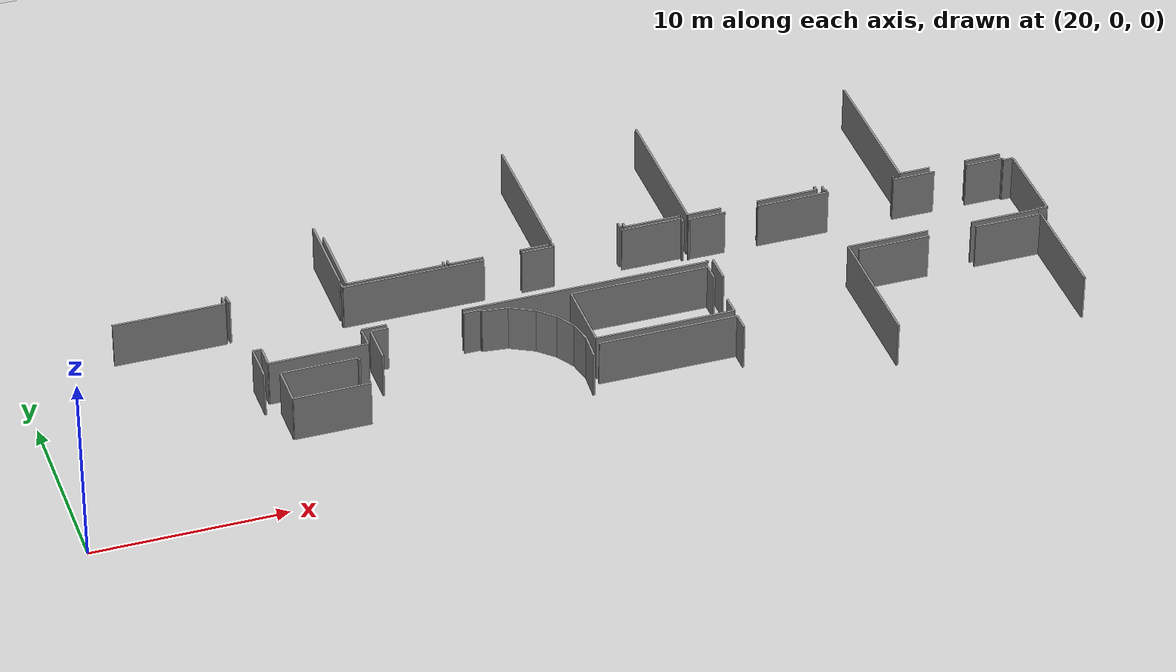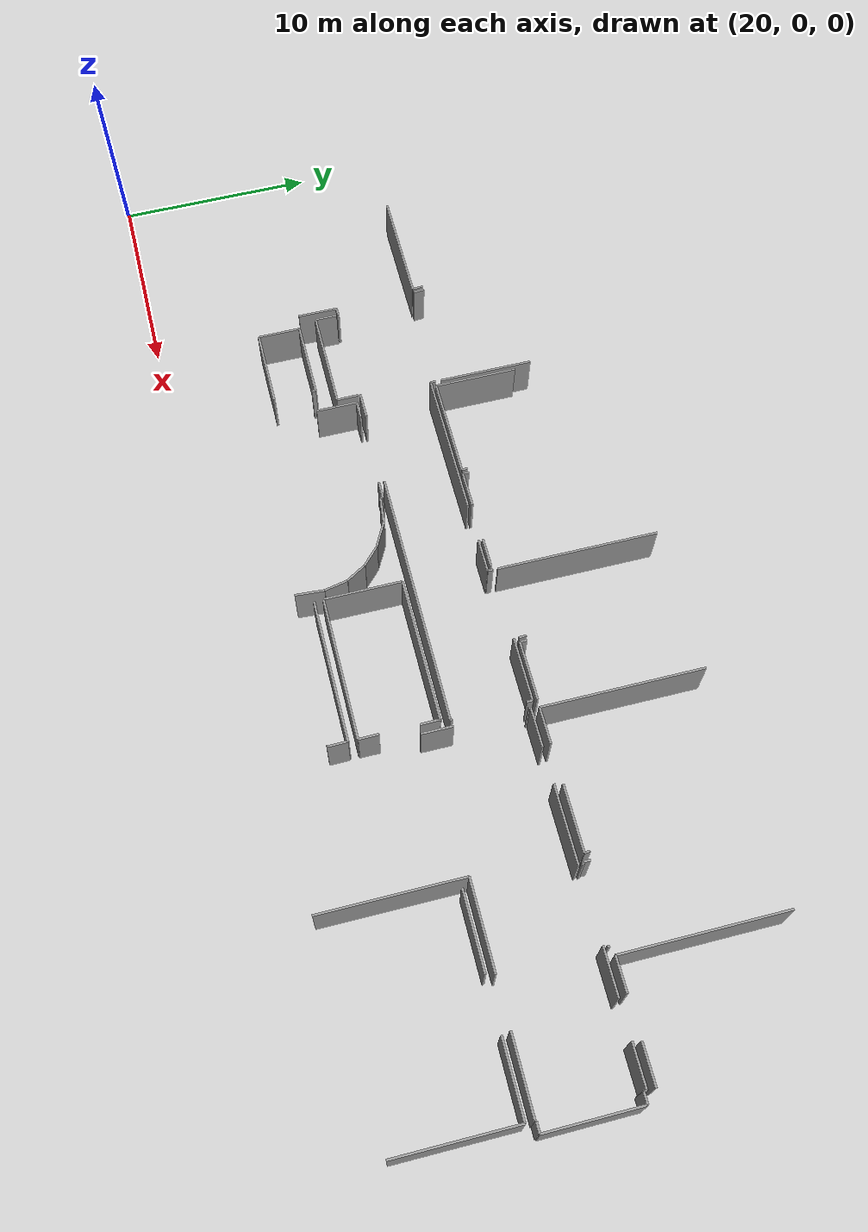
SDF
<sdf version="1.6">
 <world name="default">
  <model name="ground_plane">
   <static>1</static>
   <link name="link">
    <collision name="collision">
     <geometry><plane><normal>0 0 1</normal><size>100 100</size></plane></geometry>
     <surface><friction><ode><mu>100</mu><mu2>50</mu2></ode></friction></surface>
    </collision>
    <visual name="visual">
     <cast_shadows>0</cast_shadows>
     <geometry><plane><normal>0 0 1</normal><size>100 100</size></plane></geometry>
     <material>
      <script><uri>file://media/materials/scripts/gazebo.material</uri><name>Gazebo/Grey</name></script>
     </material>
    </visual>
   </link>
  </model>
  <model name="0510032217_A-40">
   <static>1</static>
   <link name="Wall_15">
    <collision name="Wall_15_Collision">
     <geometry><box><size>0.261014110243 0.1 2.5</size></box></geometry>
     <pose>0.130507055121 0 1.25 0 0 0</pose>
    </collision>
    <visual name="Wall_15_Visual">
     <pose>0.130507055121 0 1.25 0 0 0</pose>
     <geometry><box><size>0.261014110243 0.1 2.5</size></box></geometry>
     <material>
      <script><uri>file://media/materials/scripts/gazebo.material</uri><name>Gazebo/Grey</name></script>
      <ambient>1 1 1 1</ambient>
     </material>
    </visual>
    <pose>113.443495584 -39.4602324637 0 0 0 -1.57079632679</pose>
   </link>
   <link name="Wall_16">
    <collision name="Wall_16_Collision">
     <geometry><box><size>7.40901938889 0.1 2.5</size></box></geometry>
     <pose>3.70450969445 0 1.25 0 0 0</pose>
    </collision>
    <visual name="Wall_16_Visual">
     <pose>3.70450969445 0 1.25 0 0 0</pose>
     <geometry><box><size>7.40901938889 0.1 2.5</size></box></geometry>
     <material>
      <script><uri>file://media/materials/scripts/gazebo.material</uri><name>Gazebo/Grey</name></script>
      <ambient>1 1 1 1</ambient>
     </material>
    </visual>
    <pose>113.443495584 -39.721246574 0 0 0 0.0</pose>
   </link>
   <link name="Wall_17">
    <collision name="Wall_17_Collision">
     <geometry><box><size>1.70160389808 0.1 2.5</size></box></geometry>
     <pose>0.850801949041 0 1.25 0 0 0</pose>
    </collision>
    <visual name="Wall_17_Visual">
     <pose>0.850801949041 0 1.25 0 0 0</pose>
     <geometry><box><size>1.70160389808 0.1 2.5</size></box></geometry>
     <material>
      <script><uri>file://media/materials/scripts/gazebo.material</uri><name>Gazebo/Grey</name></script>
      <ambient>1 1 1 1</ambient>
     </material>
    </visual>
    <pose>122.838353974 -39.721246574 0 0 0 0.0</pose>
   </link>
   <link name="Wall_18">
    <collision name="Wall_18_Collision">
     <geometry><box><size>0.251877981931 0.1 2.5</size></box></geometry>
     <pose>0.125938990965 0 1.25 0 0 0</pose>
    </collision>
    <visual name="Wall_18_Visual">
     <pose>0.125938990965 0 1.25 0 0 0</pose>
     <geometry><box><size>0.251877981931 0.1 2.5</size></box></geometry>
     <material>
      <script><uri>file://media/materials/scripts/gazebo.material</uri><name>Gazebo/Grey</name></script>
      <ambient>1 1 1 1</ambient>
     </material>
    </visual>
    <pose>124.539957872 -39.721246574 0 0 0 1.57079632679</pose>
   </link>
   <link name="Wall_19">
    <collision name="Wall_19_Collision">
     <geometry><box><size>3.22175413664 0.1 2.5</size></box></geometry>
     <pose>1.61087706832 0 1.25 0 0 0</pose>
    </collision>
    <visual name="Wall_19_Visual">
     <pose>1.61087706832 0 1.25 0 0 0</pose>
     <geometry><box><size>3.22175413664 0.1 2.5</size></box></geometry>
     <material>
      <script><uri>file://media/materials/scripts/gazebo.material</uri><name>Gazebo/Grey</name></script>
      <ambient>1 1 1 1</ambient>
     </material>
    </visual>
    <pose>128.242627652 -39.469368592 0 0 0 0.0</pose>
   </link>
   <link name="Wall_20">
    <collision name="Wall_20_Collision">
     <geometry><box><size>0.282077961628 0.1 2.5</size></box></geometry>
     <pose>0.141038980814 0 1.25 0 0 0</pose>
    </collision>
    <visual name="Wall_20_Visual">
     <pose>0.141038980814 0 1.25 0 0 0</pose>
     <geometry><box><size>0.282077961628 0.1 2.5</size></box></geometry>
     <material>
      <script><uri>file://media/materials/scripts/gazebo.material</uri><name>Gazebo/Grey</name></script>
      <ambient>1 1 1 1</ambient>
     </material>
    </visual>
    <pose>131.464381789 -39.469368592 0 0 0 -1.57079632679</pose>
   </link>
   <link name="Wall_21">
    <collision name="Wall_21_Collision">
     <geometry><box><size>0.0946604405644 0.1 2.5</size></box></geometry>
     <pose>0.0473302202822 0 1.25 0 0 0</pose>
    </collision>
    <visual name="Wall_21_Visual">
     <pose>0.0473302202822 0 1.25 0 0 0</pose>
     <geometry><box><size>0.0946604405644 0.1 2.5</size></box></geometry>
     <material>
      <script><uri>file://media/materials/scripts/gazebo.material</uri><name>Gazebo/Grey</name></script>
      <ambient>1 1 1 1</ambient>
     </material>
    </visual>
    <pose>131.464381789 -43.2985483707 0 0 0 -1.57079632679</pose>
   </link>
   <link name="Wall_22">
    <collision name="Wall_22_Collision">
     <geometry><box><size>12.9276215613 0.1 2.5</size></box></geometry>
     <pose>6.46381078063 0 1.25 0 0 0</pose>
    </collision>
    <visual name="Wall_22_Visual">
     <pose>6.46381078063 0 1.25 0 0 0</pose>
     <geometry><box><size>12.9276215613 0.1 2.5</size></box></geometry>
     <material>
      <script><uri>file://media/materials/scripts/gazebo.material</uri><name>Gazebo/Grey</name></script>
      <ambient>1 1 1 1</ambient>
     </material>
    </visual>
    <pose>131.464381789 -43.3932088113 0 0 0 3.14159265359</pose>
   </link>
   <link name="Wall_23">
    <collision name="Wall_23_Collision">
     <geometry><box><size>1.30595878591 0.1 2.5</size></box></geometry>
     <pose>0.652979392955 0 1.25 0 0 0</pose>
    </collision>
    <visual name="Wall_23_Visual">
     <pose>0.652979392955 0 1.25 0 0 0</pose>
     <geometry><box><size>1.30595878591 0.1 2.5</size></box></geometry>
     <material>
      <script><uri>file://media/materials/scripts/gazebo.material</uri><name>Gazebo/Grey</name></script>
      <ambient>1 1 1 1</ambient>
     </material>
    </visual>
    <pose>114.604418333 -43.3932088113 0 0 0 3.14159265359</pose>
   </link>
   <link name="Wall_24">
    <collision name="Wall_24_Collision">
     <geometry><box><size>0.433458532129 0.1 2.5</size></box></geometry>
     <pose>0.216729266064 0 1.25 0 0 0</pose>
    </collision>
    <visual name="Wall_24_Visual">
     <pose>0.216729266064 0 1.25 0 0 0</pose>
     <geometry><box><size>0.433458532129 0.1 2.5</size></box></geometry>
     <material>
      <script><uri>file://media/materials/scripts/gazebo.material</uri><name>Gazebo/Grey</name></script>
      <ambient>1 1 1 1</ambient>
     </material>
    </visual>
    <pose>108.186161303 -43.3932088113 0 0 0 3.14159265359</pose>
   </link>
   <link name="Wall_25">
    <collision name="Wall_25_Collision">
     <geometry><box><size>2.03050451731 0.1 2.5</size></box></geometry>
     <pose>1.01525225865 0 1.25 0 0 0</pose>
    </collision>
    <visual name="Wall_25_Visual">
     <pose>1.01525225865 0 1.25 0 0 0</pose>
     <geometry><box><size>2.03050451731 0.1 2.5</size></box></geometry>
     <material>
      <script><uri>file://media/materials/scripts/gazebo.material</uri><name>Gazebo/Grey</name></script>
      <ambient>1 1 1 1</ambient>
     </material>
    </visual>
    <pose>107.752702771 -43.3932088113 0 0 0 -1.57079632679</pose>
   </link>
   <link name="Wall_86">
    <collision name="Wall_86_Collision">
     <geometry><box><size>4.7606841945 0.1 2.5</size></box></geometry>
     <pose>2.38034209725 0 1.25 0 0 0</pose>
    </collision>
    <visual name="Wall_86_Visual">
     <pose>2.38034209725 0 1.25 0 0 0</pose>
     <geometry><box><size>4.7606841945 0.1 2.5</size></box></geometry>
     <material>
      <script><uri>file://media/materials/scripts/gazebo.material</uri><name>Gazebo/Grey</name></script>
      <ambient>1 1 1 1</ambient>
     </material>
    </visual>
    <pose>113.449840118 -39.1850065983 0 0 0 1.57079632679</pose>
   </link>
   <link name="Wall_92">
    <collision name="Wall_92_Collision">
     <geometry><box><size>0.55442948582 0.1 2.5</size></box></geometry>
     <pose>0.27721474291 0 1.25 0 0 0</pose>
    </collision>
    <visual name="Wall_92_Visual">
     <pose>0.27721474291 0 1.25 0 0 0</pose>
     <geometry><box><size>0.55442948582 0.1 2.5</size></box></geometry>
     <material>
      <script><uri>file://media/materials/scripts/gazebo.material</uri><name>Gazebo/Grey</name></script>
      <ambient>1 1 1 1</ambient>
     </material>
    </visual>
    <pose>107.668574256 -38.6329052888 0 0 0 -1.47912112737</pose>
   </link>
   <link name="Wall_101">
    <collision name="Wall_101_Collision">
     <geometry><box><size>5.80486752614 0.1 2.5</size></box></geometry>
     <pose>2.90243376307 0 1.25 0 0 0</pose>
    </collision>
    <visual name="Wall_101_Visual">
     <pose>2.90243376307 0 1.25 0 0 0</pose>
     <geometry><box><size>5.80486752614 0.1 2.5</size></box></geometry>
     <material>
      <script><uri>file://media/materials/scripts/gazebo.material</uri><name>Gazebo/Grey</name></script>
      <ambient>1 1 1 1</ambient>
     </material>
    </visual>
    <pose>107.500571008 -39.1928738199 0 0 0 3.14159265359</pose>
   </link>
   <link name="Wall_105">
    <collision name="Wall_105_Collision">
     <geometry><box><size>0.543974283149 0.1 2.5</size></box></geometry>
     <pose>0.271987141575 0 1.25 0 0 0</pose>
    </collision>
    <visual name="Wall_105_Visual">
     <pose>0.271987141575 0 1.25 0 0 0</pose>
     <geometry><box><size>0.543974283149 0.1 2.5</size></box></geometry>
     <material>
      <script><uri>file://media/materials/scripts/gazebo.material</uri><name>Gazebo/Grey</name></script>
      <ambient>1 1 1 1</ambient>
     </material>
    </visual>
    <pose>107.467452543 -38.6499086387 0 0 0 -1.50987624249</pose>
   </link>
   <link name="Wall_121">
    <collision name="Wall_121_Collision">
     <geometry><box><size>1.50238554461 0.1 2.5</size></box></geometry>
     <pose>0.751192772307 0 1.25 0 0 0</pose>
    </collision>
    <visual name="Wall_121_Visual">
     <pose>0.751192772307 0 1.25 0 0 0</pose>
     <geometry><box><size>1.50238554461 0.1 2.5</size></box></geometry>
     <material>
      <script><uri>file://media/materials/scripts/gazebo.material</uri><name>Gazebo/Grey</name></script>
      <ambient>1 1 1 1</ambient>
     </material>
    </visual>
    <pose>124.340739519 -39.5054055426 0 0 0 3.14159265359</pose>
   </link>
   <link name="Wall_122">
    <collision name="Wall_122_Collision">
     <geometry><box><size>1.80184752817 0.1 2.5</size></box></geometry>
     <pose>0.900923764085 0 1.25 0 0 0</pose>
    </collision>
    <visual name="Wall_122_Visual">
     <pose>0.900923764085 0 1.25 0 0 0</pose>
     <geometry><box><size>1.80184752817 0.1 2.5</size></box></geometry>
     <material>
      <script><uri>file://media/materials/scripts/gazebo.material</uri><name>Gazebo/Grey</name></script>
      <ambient>1 1 1 1</ambient>
     </material>
    </visual>
    <pose>120.86139732 -39.5054055426 0 0 0 3.14159265359</pose>
   </link>
   <link name="Wall_123">
    <collision name="Wall_123_Collision">
     <geometry><box><size>0.308725002538 0.1 2.5</size></box></geometry>
     <pose>0.154362501269 0 1.25 0 0 0</pose>
    </collision>
    <visual name="Wall_123_Visual">
     <pose>0.154362501269 0 1.25 0 0 0</pose>
     <geometry><box><size>0.308725002538 0.1 2.5</size></box></geometry>
     <material>
      <script><uri>file://media/materials/scripts/gazebo.material</uri><name>Gazebo/Grey</name></script>
      <ambient>1 1 1 1</ambient>
     </material>
    </visual>
    <pose>119.059549792 -39.5054055426 0 0 0 1.57079632679</pose>
   </link>
   <link name="Wall_128">
    <collision name="Wall_128_Collision">
     <geometry><box><size>5.1102679931 0.1 2.5</size></box></geometry>
     <pose>2.55513399655 0 1.25 0 0 0</pose>
    </collision>
    <visual name="Wall_128_Visual">
     <pose>2.55513399655 0 1.25 0 0 0</pose>
     <geometry><box><size>5.1102679931 0.1 2.5</size></box></geometry>
     <material>
      <script><uri>file://media/materials/scripts/gazebo.material</uri><name>Gazebo/Grey</name></script>
      <ambient>1 1 1 1</ambient>
     </material>
    </visual>
    <pose>118.822264237 -39.4999492437 0 0 0 3.14159265359</pose>
   </link>
   <link name="Wall_129">
    <collision name="Wall_129_Collision">
     <geometry><box><size>4.17825601462 0.1 2.5</size></box></geometry>
     <pose>2.08912800731 0 1.25 0 0 0</pose>
    </collision>
    <visual name="Wall_129_Visual">
     <pose>2.08912800731 0 1.25 0 0 0</pose>
     <geometry><box><size>4.17825601462 0.1 2.5</size></box></geometry>
     <material>
      <script><uri>file://media/materials/scripts/gazebo.material</uri><name>Gazebo/Grey</name></script>
      <ambient>1 1 1 1</ambient>
     </material>
    </visual>
    <pose>113.711996244 -39.4999492437 0 0 0 1.57079632679</pose>
   </link>
   <link name="Wall_132">
    <collision name="Wall_132_Collision">
     <geometry><box><size>0.303311174576 0.1 2.5</size></box></geometry>
     <pose>0.151655587288 0 1.25 0 0 0</pose>
    </collision>
    <visual name="Wall_132_Visual">
     <pose>0.151655587288 0 1.25 0 0 0</pose>
     <geometry><box><size>0.303311174576 0.1 2.5</size></box></geometry>
     <material>
      <script><uri>file://media/materials/scripts/gazebo.material</uri><name>Gazebo/Grey</name></script>
      <ambient>1 1 1 1</ambient>
     </material>
    </visual>
    <pose>118.827339864 -39.19668054 0 0 0 -1.58753116607</pose>
   </link>
   <link name="Wall_138">
    <collision name="Wall_138_Collision">
     <geometry><box><size>8.04575677596 0.1 2.5</size></box></geometry>
     <pose>4.02287838798 0 1.25 0 0 0</pose>
    </collision>
    <visual name="Wall_138_Visual">
     <pose>4.02287838798 0 1.25 0 0 0</pose>
     <geometry><box><size>8.04575677596 0.1 2.5</size></box></geometry>
     <material>
      <script><uri>file://media/materials/scripts/gazebo.material</uri><name>Gazebo/Grey</name></script>
      <ambient>1 1 1 1</ambient>
     </material>
    </visual>
    <pose>124.550109126 -39.2351284134 0 0 0 1.57079632679</pose>
   </link>
   <link name="Wall_143">
    <collision name="Wall_143_Collision">
     <geometry><box><size>0.379794207524 0.1 2.5</size></box></geometry>
     <pose>0.189897103762 0 1.25 0 0 0</pose>
    </collision>
    <visual name="Wall_143_Visual">
     <pose>0.189897103762 0 1.25 0 0 0</pose>
     <geometry><box><size>0.379794207524 0.1 2.5</size></box></geometry>
     <material>
      <script><uri>file://media/materials/scripts/gazebo.material</uri><name>Gazebo/Grey</name></script>
      <ambient>1 1 1 1</ambient>
     </material>
    </visual>
    <pose>128.243896559 -38.8571211045 0 0 0 -1.47375399805</pose>
   </link>
   <link name="Wall_154">
    <collision name="Wall_154_Collision">
     <geometry><box><size>2.97431732819 0.1 2.5</size></box></geometry>
     <pose>1.4871586641 0 1.25 0 0 0</pose>
    </collision>
    <visual name="Wall_154_Visual">
     <pose>1.4871586641 0 1.25 0 0 0</pose>
     <geometry><box><size>2.97431732819 0.1 2.5</size></box></geometry>
     <material>
      <script><uri>file://media/materials/scripts/gazebo.material</uri><name>Gazebo/Grey</name></script>
      <ambient>1 1 1 1</ambient>
     </material>
    </visual>
    <pose>131.468188509 -39.2408384936 0 0 0 3.14159265359</pose>
   </link>
   <link name="Wall_155">
    <collision name="Wall_155_Collision">
     <geometry><box><size>0.33575271546 0.1 2.5</size></box></geometry>
     <pose>0.16787635773 0 1.25 0 0 0</pose>
    </collision>
    <visual name="Wall_155_Visual">
     <pose>0.16787635773 0 1.25 0 0 0</pose>
     <geometry><box><size>0.33575271546 0.1 2.5</size></box></geometry>
     <material>
      <script><uri>file://media/materials/scripts/gazebo.material</uri><name>Gazebo/Grey</name></script>
      <ambient>1 1 1 1</ambient>
     </material>
    </visual>
    <pose>128.493871181 -39.2408384936 0 0 0 1.57079632679</pose>
   </link>
   <link name="Wall_170">
    <collision name="Wall_170_Collision">
     <geometry><box><size>1.54527459141 0.1 2.5</size></box></geometry>
     <pose>0.772637295706 0 1.25 0 0 0</pose>
    </collision>
    <visual name="Wall_170_Visual">
     <pose>0.772637295706 0 1.25 0 0 0</pose>
     <geometry><box><size>1.54527459141 0.1 2.5</size></box></geometry>
     <material>
      <script><uri>file://media/materials/scripts/gazebo.material</uri><name>Gazebo/Grey</name></script>
      <ambient>1 1 1 1</ambient>
     </material>
    </visual>
    <pose>131.785415186 -44.8722464724 0 0 0 1.57079632679</pose>
   </link>
   <link name="Wall_171">
    <collision name="Wall_171_Collision">
     <geometry><box><size>0.116104963963 0.1 2.5</size></box></geometry>
     <pose>0.0580524819815 0 1.25 0 0 0</pose>
    </collision>
    <visual name="Wall_171_Visual">
     <pose>0.0580524819815 0 1.25 0 0 0</pose>
     <geometry><box><size>0.116104963963 0.1 2.5</size></box></geometry>
     <material>
      <script><uri>file://media/materials/scripts/gazebo.material</uri><name>Gazebo/Grey</name></script>
      <ambient>1 1 1 1</ambient>
     </material>
    </visual>
    <pose>131.785415186 -39.7720028424 0 0 0 1.57079632679</pose>
   </link>
   <link name="Wall_172">
    <collision name="Wall_172_Collision">
     <geometry><box><size>1.96553649376 0.1 2.5</size></box></geometry>
     <pose>0.982768246878 0 1.25 0 0 0</pose>
    </collision>
    <visual name="Wall_172_Visual">
     <pose>0.982768246878 0 1.25 0 0 0</pose>
     <geometry><box><size>1.96553649376 0.1 2.5</size></box></geometry>
     <material>
      <script><uri>file://media/materials/scripts/gazebo.material</uri><name>Gazebo/Grey</name></script>
      <ambient>1 1 1 1</ambient>
     </material>
    </visual>
    <pose>131.785415186 -39.6558978784 0 0 0 0.0</pose>
   </link>
   <link name="Wall_173">
    <collision name="Wall_173_Collision">
     <geometry><box><size>3.83844279769 0.1 2.5</size></box></geometry>
     <pose>1.91922139884 0 1.25 0 0 0</pose>
    </collision>
    <visual name="Wall_173_Visual">
     <pose>1.91922139884 0 1.25 0 0 0</pose>
     <geometry><box><size>3.83844279769 0.1 2.5</size></box></geometry>
     <material>
      <script><uri>file://media/materials/scripts/gazebo.material</uri><name>Gazebo/Grey</name></script>
      <ambient>1 1 1 1</ambient>
     </material>
    </visual>
    <pose>135.519807634 -39.6558978784 0 0 0 0.0</pose>
   </link>
   <link name="Wall_174">
    <collision name="Wall_174_Collision">
     <geometry><box><size>2.2637295706 0.1 2.5</size></box></geometry>
     <pose>1.1318647853 0 1.25 0 0 0</pose>
    </collision>
    <visual name="Wall_174_Visual">
     <pose>1.1318647853 0 1.25 0 0 0</pose>
     <geometry><box><size>2.2637295706 0.1 2.5</size></box></geometry>
     <material>
      <script><uri>file://media/materials/scripts/gazebo.material</uri><name>Gazebo/Grey</name></script>
      <ambient>1 1 1 1</ambient>
     </material>
    </visual>
    <pose>142.920071566 -39.6558978784 0 0 0 0.0</pose>
   </link>
   <link name="Wall_175">
    <collision name="Wall_175_Collision">
     <geometry><box><size>2.0086793219 0.1 2.5</size></box></geometry>
     <pose>1.00433966095 0 1.25 0 0 0</pose>
    </collision>
    <visual name="Wall_175_Visual">
     <pose>1.00433966095 0 1.25 0 0 0</pose>
     <geometry><box><size>2.0086793219 0.1 2.5</size></box></geometry>
     <material>
      <script><uri>file://media/materials/scripts/gazebo.material</uri><name>Gazebo/Grey</name></script>
      <ambient>1 1 1 1</ambient>
     </material>
    </visual>
    <pose>146.948850371 -39.6558978784 0 0 0 0.0</pose>
   </link>
   <link name="Wall_176">
    <collision name="Wall_176_Collision">
     <geometry><box><size>0.141483098163 0.1 2.5</size></box></geometry>
     <pose>0.0707415490813 0 1.25 0 0 0</pose>
    </collision>
    <visual name="Wall_176_Visual">
     <pose>0.0707415490813 0 1.25 0 0 0</pose>
     <geometry><box><size>0.141483098163 0.1 2.5</size></box></geometry>
     <material>
      <script><uri>file://media/materials/scripts/gazebo.material</uri><name>Gazebo/Grey</name></script>
      <ambient>1 1 1 1</ambient>
     </material>
    </visual>
    <pose>148.957529692 -39.6558978784 0 0 0 -1.57079632679</pose>
   </link>
   <link name="Wall_177">
    <collision name="Wall_177_Collision">
     <geometry><box><size>0.538016445031 0.1 2.5</size></box></geometry>
     <pose>0.269008222515 0 1.25 0 0 0</pose>
    </collision>
    <visual name="Wall_177_Visual">
     <pose>0.269008222515 0 1.25 0 0 0</pose>
     <geometry><box><size>0.538016445031 0.1 2.5</size></box></geometry>
     <material>
      <script><uri>file://media/materials/scripts/gazebo.material</uri><name>Gazebo/Grey</name></script>
      <ambient>1 1 1 1</ambient>
     </material>
    </visual>
    <pose>148.957529692 -39.7973809766 0 0 0 0.0</pose>
   </link>
   <link name="Wall_178">
    <collision name="Wall_178_Collision">
     <geometry><box><size>4.57669272155 0.1 2.5</size></box></geometry>
     <pose>2.28834636078 0 1.25 0 0 0</pose>
    </collision>
    <visual name="Wall_178_Visual">
     <pose>2.28834636078 0 1.25 0 0 0</pose>
     <geometry><box><size>4.57669272155 0.1 2.5</size></box></geometry>
     <material>
      <script><uri>file://media/materials/scripts/gazebo.material</uri><name>Gazebo/Grey</name></script>
      <ambient>1 1 1 1</ambient>
     </material>
    </visual>
    <pose>149.495546137 -39.7973809766 0 0 0 -1.57079632679</pose>
   </link>
   <link name="Wall_179">
    <collision name="Wall_179_Collision">
     <geometry><box><size>0.516445030961 0.1 2.5</size></box></geometry>
     <pose>0.258222515481 0 1.25 0 0 0</pose>
    </collision>
    <visual name="Wall_179_Visual">
     <pose>0.258222515481 0 1.25 0 0 0</pose>
     <geometry><box><size>0.516445030961 0.1 2.5</size></box></geometry>
     <material>
      <script><uri>file://media/materials/scripts/gazebo.material</uri><name>Gazebo/Grey</name></script>
      <ambient>1 1 1 1</ambient>
     </material>
    </visual>
    <pose>149.495546137 -44.3740736981 0 0 0 3.14159265359</pose>
   </link>
   <link name="Wall_180">
    <collision name="Wall_180_Collision">
     <geometry><box><size>0.0479646736372 0.1 2.5</size></box></geometry>
     <pose>0.0239823368186 0 1.25 0 0 0</pose>
    </collision>
    <visual name="Wall_180_Visual">
     <pose>0.0239823368186 0 1.25 0 0 0</pose>
     <geometry><box><size>0.0479646736372 0.1 2.5</size></box></geometry>
     <material>
      <script><uri>file://media/materials/scripts/gazebo.material</uri><name>Gazebo/Grey</name></script>
      <ambient>1 1 1 1</ambient>
     </material>
    </visual>
    <pose>148.979101106 -44.3740736981 0 0 0 -1.57079632679</pose>
   </link>
   <link name="Wall_181">
    <collision name="Wall_181_Collision">
     <geometry><box><size>3.65572023145 0.1 2.5</size></box></geometry>
     <pose>1.82786011572 0 1.25 0 0 0</pose>
    </collision>
    <visual name="Wall_181_Visual">
     <pose>1.82786011572 0 1.25 0 0 0</pose>
     <geometry><box><size>3.65572023145 0.1 2.5</size></box></geometry>
     <material>
      <script><uri>file://media/materials/scripts/gazebo.material</uri><name>Gazebo/Grey</name></script>
      <ambient>1 1 1 1</ambient>
     </material>
    </visual>
    <pose>148.979101106 -44.4220383717 0 0 0 3.14159265359</pose>
   </link>
   <link name="Wall_182">
    <collision name="Wall_182_Collision">
     <geometry><box><size>4.30793828038 0.1 2.5</size></box></geometry>
     <pose>2.15396914019 0 1.25 0 0 0</pose>
    </collision>
    <visual name="Wall_182_Visual">
     <pose>2.15396914019 0 1.25 0 0 0</pose>
     <geometry><box><size>4.30793828038 0.1 2.5</size></box></geometry>
     <material>
      <script><uri>file://media/materials/scripts/gazebo.material</uri><name>Gazebo/Grey</name></script>
      <ambient>1 1 1 1</ambient>
     </material>
    </visual>
    <pose>142.963214394 -44.4220383717 0 0 0 3.14159265359</pose>
   </link>
   <link name="Wall_183">
    <collision name="Wall_183_Collision">
     <geometry><box><size>7.00588772713 0.1 2.5</size></box></geometry>
     <pose>3.50294386357 0 1.25 0 0 0</pose>
    </collision>
    <visual name="Wall_183_Visual">
     <pose>3.50294386357 0 1.25 0 0 0</pose>
     <geometry><box><size>7.00588772713 0.1 2.5</size></box></geometry>
     <material>
      <script><uri>file://media/materials/scripts/gazebo.material</uri><name>Gazebo/Grey</name></script>
      <ambient>1 1 1 1</ambient>
     </material>
    </visual>
    <pose>138.655276114 -44.4220383717 0 0 0 -1.57079632679</pose>
   </link>
   <link name="Wall_187">
    <collision name="Wall_187_Collision">
     <geometry><box><size>3.24459445742 0.1 2.5</size></box></geometry>
     <pose>1.62229722871 0 1.25 0 0 0</pose>
    </collision>
    <visual name="Wall_187_Visual">
     <pose>1.62229722871 0 1.25 0 0 0</pose>
     <geometry><box><size>3.24459445742 0.1 2.5</size></box></geometry>
     <material>
      <script><uri>file://media/materials/scripts/gazebo.material</uri><name>Gazebo/Grey</name></script>
      <ambient>1 1 1 1</ambient>
     </material>
    </visual>
    <pose>138.872259162 -39.2566998274 0 0 0 3.14159265359</pose>
   </link>
   <link name="Wall_188">
    <collision name="Wall_188_Collision">
     <geometry><box><size>1.80692315501 0.1 2.5</size></box></geometry>
     <pose>0.903461577505 0 1.25 0 0 0</pose>
    </collision>
    <visual name="Wall_188_Visual">
     <pose>0.903461577505 0 1.25 0 0 0</pose>
     <geometry><box><size>1.80692315501 0.1 2.5</size></box></geometry>
     <material>
      <script><uri>file://media/materials/scripts/gazebo.material</uri><name>Gazebo/Grey</name></script>
      <ambient>1 1 1 1</ambient>
     </material>
    </visual>
    <pose>133.668472744 -39.2566998274 0 0 0 3.14159265359</pose>
   </link>
   <link name="Wall_189">
    <collision name="Wall_189_Collision">
     <geometry><box><size>8.06123743782 0.1 2.5</size></box></geometry>
     <pose>4.03061871891 0 1.25 0 0 0</pose>
    </collision>
    <visual name="Wall_189_Visual">
     <pose>4.03061871891 0 1.25 0 0 0</pose>
     <geometry><box><size>8.06123743782 0.1 2.5</size></box></geometry>
     <material>
      <script><uri>file://media/materials/scripts/gazebo.material</uri><name>Gazebo/Grey</name></script>
      <ambient>1 1 1 1</ambient>
     </material>
    </visual>
    <pose>131.861549589 -39.2566998274 0 0 0 1.57079632679</pose>
   </link>
   <link name="Wall_192">
    <collision name="Wall_192_Collision">
     <geometry><box><size>0.275139971168 0.1 2.5</size></box></geometry>
     <pose>0.137569985584 0 1.25 0 0 0</pose>
    </collision>
    <visual name="Wall_192_Visual">
     <pose>0.137569985584 0 1.25 0 0 0</pose>
     <geometry><box><size>0.275139971168 0.1 2.5</size></box></geometry>
     <material>
      <script><uri>file://media/materials/scripts/gazebo.material</uri><name>Gazebo/Grey</name></script>
      <ambient>1 1 1 1</ambient>
     </material>
    </visual>
    <pose>138.857032281 -38.9819815247 0 0 0 -1.5154257315</pose>
   </link>
   <link name="Wall_193">
    <collision name="Wall_193_Collision">
     <geometry><box><size>7.24418840727 0.1 2.5</size></box></geometry>
     <pose>3.62209420363 0 1.25 0 0 0</pose>
    </collision>
    <visual name="Wall_193_Visual">
     <pose>3.62209420363 0 1.25 0 0 0</pose>
     <geometry><box><size>7.24418840727 0.1 2.5</size></box></geometry>
     <material>
      <script><uri>file://media/materials/scripts/gazebo.material</uri><name>Gazebo/Grey</name></script>
      <ambient>1 1 1 1</ambient>
     </material>
    </visual>
    <pose>131.343835651 -47.7034311237 0 0 0 3.14159265359</pose>
   </link>
   <link name="Wall_194">
    <collision name="Wall_194_Collision">
     <geometry><box><size>3.86864277738 0.1 2.5</size></box></geometry>
     <pose>1.93432138869 0 1.25 0 0 0</pose>
    </collision>
    <visual name="Wall_194_Visual">
     <pose>1.93432138869 0 1.25 0 0 0</pose>
     <geometry><box><size>3.86864277738 0.1 2.5</size></box></geometry>
     <material>
      <script><uri>file://media/materials/scripts/gazebo.material</uri><name>Gazebo/Grey</name></script>
      <ambient>1 1 1 1</ambient>
     </material>
    </visual>
    <pose>124.099647244 -47.7034311237 0 0 0 1.57079632679</pose>
   </link>
   <link name="Wall_195">
    <collision name="Wall_195_Collision">
     <geometry><box><size>7.2353060603 0.1 2.5</size></box></geometry>
     <pose>3.61765303015 0 1.25 0 0 0</pose>
    </collision>
    <visual name="Wall_195_Visual">
     <pose>3.61765303015 0 1.25 0 0 0</pose>
     <geometry><box><size>7.2353060603 0.1 2.5</size></box></geometry>
     <material>
      <script><uri>file://media/materials/scripts/gazebo.material</uri><name>Gazebo/Grey</name></script>
      <ambient>1 1 1 1</ambient>
     </material>
    </visual>
    <pose>124.099647244 -43.8347883464 0 0 0 0.0</pose>
   </link>
   <link name="Wall_196">
    <collision name="Wall_196_Collision">
     <geometry><box><size>0.946350624302 0.1 2.5</size></box></geometry>
     <pose>0.473175312151 0 1.25 0 0 0</pose>
    </collision>
    <visual name="Wall_196_Visual">
     <pose>0.473175312151 0 1.25 0 0 0</pose>
     <geometry><box><size>0.946350624302 0.1 2.5</size></box></geometry>
     <material>
      <script><uri>file://media/materials/scripts/gazebo.material</uri><name>Gazebo/Grey</name></script>
      <ambient>1 1 1 1</ambient>
     </material>
    </visual>
    <pose>131.334953304 -43.8347883464 0 0 0 -1.57079632679</pose>
   </link>
   <link name="Wall_197">
    <collision name="Wall_197_Collision">
     <geometry><box><size>0.993339885899 0.1 2.5</size></box></geometry>
     <pose>0.49666994295 0 1.25 0 0 0</pose>
    </collision>
    <visual name="Wall_197_Visual">
     <pose>0.49666994295 0 1.25 0 0 0</pose>
     <geometry><box><size>0.993339885899 0.1 2.5</size></box></geometry>
     <material>
      <script><uri>file://media/materials/scripts/gazebo.material</uri><name>Gazebo/Grey</name></script>
      <ambient>1 1 1 1</ambient>
     </material>
    </visual>
    <pose>131.334953304 -46.7101309512 0 0 0 -1.56185430658</pose>
   </link>
   <link name="Wall_200">
    <collision name="Wall_200_Collision">
     <geometry><box><size>7.24165059385 0.1 2.5</size></box></geometry>
     <pose>3.62082529692 0 1.25 0 0 0</pose>
    </collision>
    <visual name="Wall_200_Visual">
     <pose>3.62082529692 0 1.25 0 0 0</pose>
     <geometry><box><size>7.24165059385 0.1 2.5</size></box></geometry>
     <material>
      <script><uri>file://media/materials/scripts/gazebo.material</uri><name>Gazebo/Grey</name></script>
      <ambient>1 1 1 1</ambient>
     </material>
    </visual>
    <pose>124.099647244 -48.1660745102 0 0 0 0.0</pose>
   </link>
   <link name="Wall_201">
    <collision name="Wall_201_Collision">
     <geometry><box><size>0.993934625926 0.1 2.5</size></box></geometry>
     <pose>0.496967312963 0 1.25 0 0 0</pose>
    </collision>
    <visual name="Wall_201_Visual">
     <pose>0.496967312963 0 1.25 0 0 0</pose>
     <geometry><box><size>0.993934625926 0.1 2.5</size></box></geometry>
     <material>
      <script><uri>file://media/materials/scripts/gazebo.material</uri><name>Gazebo/Grey</name></script>
      <ambient>1 1 1 1</ambient>
     </material>
    </visual>
    <pose>131.341297838 -48.1660745102 0 0 0 -1.57079632679</pose>
   </link>
   <link name="Wall_203">
    <collision name="Wall_203_Collision">
     <geometry><box><size>0.114201603898 0.1 2.5</size></box></geometry>
     <pose>0.057100801949 0 1.25 0 0 0</pose>
    </collision>
    <visual name="Wall_203_Visual">
     <pose>0.057100801949 0 1.25 0 0 0</pose>
     <geometry><box><size>0.114201603898 0.1 2.5</size></box></geometry>
     <material>
      <script><uri>file://media/materials/scripts/gazebo.material</uri><name>Gazebo/Grey</name></script>
      <ambient>1 1 1 1</ambient>
     </material>
    </visual>
    <pose>143.071071465 -39.4387879403 0 0 0 3.14159265359</pose>
   </link>
   <link name="Wall_204">
    <collision name="Wall_204_Collision">
     <geometry><box><size>0.126890670998 0.1 2.5</size></box></geometry>
     <pose>0.0634453354989 0 1.25 0 0 0</pose>
    </collision>
    <visual name="Wall_204_Visual">
     <pose>0.0634453354989 0 1.25 0 0 0</pose>
     <geometry><box><size>0.126890670998 0.1 2.5</size></box></geometry>
     <material>
      <script><uri>file://media/materials/scripts/gazebo.material</uri><name>Gazebo/Grey</name></script>
      <ambient>1 1 1 1</ambient>
     </material>
    </visual>
    <pose>139.365863872 -39.4387879403 0 0 0 3.14159265359</pose>
   </link>
   <link name="Wall_205">
    <collision name="Wall_205_Collision">
     <geometry><box><size>0.355293878794 0.1 2.5</size></box></geometry>
     <pose>0.177646939397 0 1.25 0 0 0</pose>
    </collision>
    <visual name="Wall_205_Visual">
     <pose>0.177646939397 0 1.25 0 0 0</pose>
     <geometry><box><size>0.355293878794 0.1 2.5</size></box></geometry>
     <material>
      <script><uri>file://media/materials/scripts/gazebo.material</uri><name>Gazebo/Grey</name></script>
      <ambient>1 1 1 1</ambient>
     </material>
    </visual>
    <pose>139.238973201 -39.4387879403 0 0 0 1.57079632679</pose>
   </link>
   <link name="Wall_227">
    <collision name="Wall_227_Collision">
     <geometry><box><size>1.9198558522 0.1 2.5</size></box></geometry>
     <pose>0.959927926099 0 1.25 0 0 0</pose>
    </collision>
    <visual name="Wall_227_Visual">
     <pose>0.959927926099 0 1.25 0 0 0</pose>
     <geometry><box><size>1.9198558522 0.1 2.5</size></box></geometry>
     <material>
      <script><uri>file://media/materials/scripts/gazebo.material</uri><name>Gazebo/Grey</name></script>
      <ambient>1 1 1 1</ambient>
     </material>
    </visual>
    <pose>148.960067506 -39.2601258755 0 0 0 3.14159265359</pose>
   </link>
   <link name="Wall_228">
    <collision name="Wall_228_Collision">
     <geometry><box><size>1.65084762968 0.1 2.5</size></box></geometry>
     <pose>0.825423814841 0 1.25 0 0 0</pose>
    </collision>
    <visual name="Wall_228_Visual">
     <pose>0.825423814841 0 1.25 0 0 0</pose>
     <geometry><box><size>1.65084762968 0.1 2.5</size></box></geometry>
     <material>
      <script><uri>file://media/materials/scripts/gazebo.material</uri><name>Gazebo/Grey</name></script>
      <ambient>1 1 1 1</ambient>
     </material>
    </visual>
    <pose>145.083557507 -39.2601258755 0 0 0 3.14159265359</pose>
   </link>
   <link name="Wall_229">
    <collision name="Wall_229_Collision">
     <geometry><box><size>8.0595878591 0.1 2.5</size></box></geometry>
     <pose>4.02979392955 0 1.25 0 0 0</pose>
    </collision>
    <visual name="Wall_229_Visual">
     <pose>4.02979392955 0 1.25 0 0 0</pose>
     <geometry><box><size>8.0595878591 0.1 2.5</size></box></geometry>
     <material>
      <script><uri>file://media/materials/scripts/gazebo.material</uri><name>Gazebo/Grey</name></script>
      <ambient>1 1 1 1</ambient>
     </material>
    </visual>
    <pose>143.432709877 -39.2601258755 0 0 0 1.57079632679</pose>
   </link>
   <link name="Wall_234">
    <collision name="Wall_234_Collision">
     <geometry><box><size>3.78134199574 0.1 2.5</size></box></geometry>
     <pose>1.89067099787 0 1.25 0 0 0</pose>
    </collision>
    <visual name="Wall_234_Visual">
     <pose>1.89067099787 0 1.25 0 0 0</pose>
     <geometry><box><size>3.78134199574 0.1 2.5</size></box></geometry>
     <material>
      <script><uri>file://media/materials/scripts/gazebo.material</uri><name>Gazebo/Grey</name></script>
      <ambient>1 1 1 1</ambient>
     </material>
    </visual>
    <pose>139.066401888 -44.8442036341 0 0 0 0.0</pose>
   </link>
   <link name="Wall_235">
    <collision name="Wall_235_Collision">
     <geometry><box><size>3.55166988123 0.1 2.5</size></box></geometry>
     <pose>1.77583494062 0 1.25 0 0 0</pose>
    </collision>
    <visual name="Wall_235_Visual">
     <pose>1.77583494062 0 1.25 0 0 0</pose>
     <geometry><box><size>3.55166988123 0.1 2.5</size></box></geometry>
     <material>
      <script><uri>file://media/materials/scripts/gazebo.material</uri><name>Gazebo/Grey</name></script>
      <ambient>1 1 1 1</ambient>
     </material>
    </visual>
    <pose>145.412204345 -44.8442036341 0 0 0 0.0</pose>
   </link>
   <link name="Wall_236">
    <collision name="Wall_236_Collision">
     <geometry><box><size>5.78575726656 0.1 2.5</size></box></geometry>
     <pose>2.89287863328 0 1.25 0 0 0</pose>
    </collision>
    <visual name="Wall_236_Visual">
     <pose>2.89287863328 0 1.25 0 0 0</pose>
     <geometry><box><size>5.78575726656 0.1 2.5</size></box></geometry>
     <material>
      <script><uri>file://media/materials/scripts/gazebo.material</uri><name>Gazebo/Grey</name></script>
      <ambient>1 1 1 1</ambient>
     </material>
    </visual>
    <pose>148.963874226 -44.8442036341 0 0 0 -1.57496333487</pose>
   </link>
   <link name="Wall_329">
    <collision name="Wall_329_Collision">
     <geometry><box><size>2.10080194904 0.1 2.5</size></box></geometry>
     <pose>1.05040097452 0 1.25 0 0 0</pose>
    </collision>
    <visual name="Wall_329_Visual">
     <pose>1.05040097452 0 1.25 0 0 0</pose>
     <geometry><box><size>2.10080194904 0.1 2.5</size></box></geometry>
     <material>
      <script><uri>file://media/materials/scripts/gazebo.material</uri><name>Gazebo/Grey</name></script>
      <ambient>1 1 1 1</ambient>
     </material>
    </visual>
    <pose>113.708570196 -45.7715206578 0 0 0 1.57079632679</pose>
   </link>
   <link name="Wall_330">
    <collision name="Wall_330_Collision">
     <geometry><box><size>0.88886915034 0.1 2.5</size></box></geometry>
     <pose>0.44443457517 0 1.25 0 0 0</pose>
    </collision>
    <visual name="Wall_330_Visual">
     <pose>0.44443457517 0 1.25 0 0 0</pose>
     <geometry><box><size>0.88886915034 0.1 2.5</size></box></geometry>
     <material>
      <script><uri>file://media/materials/scripts/gazebo.material</uri><name>Gazebo/Grey</name></script>
      <ambient>1 1 1 1</ambient>
     </material>
    </visual>
    <pose>113.708570196 -43.6707187088 0 0 0 0.0</pose>
   </link>
   <link name="Wall_331">
    <collision name="Wall_331_Collision">
     <geometry><box><size>0.908537204345 0.1 2.5</size></box></geometry>
     <pose>0.454268602172 0 1.25 0 0 0</pose>
    </collision>
    <visual name="Wall_331_Visual">
     <pose>0.454268602172 0 1.25 0 0 0</pose>
     <geometry><box><size>0.908537204345 0.1 2.5</size></box></geometry>
     <material>
      <script><uri>file://media/materials/scripts/gazebo.material</uri><name>Gazebo/Grey</name></script>
      <ambient>1 1 1 1</ambient>
     </material>
    </visual>
    <pose>118.521533347 -43.6707187088 0 0 0 0.0</pose>
   </link>
   <link name="Wall_332">
    <collision name="Wall_332_Collision">
     <geometry><box><size>0.126256217643 0.1 2.5</size></box></geometry>
     <pose>0.0631281088214 0 1.25 0 0 0</pose>
    </collision>
    <visual name="Wall_332_Visual">
     <pose>0.0631281088214 0 1.25 0 0 0</pose>
     <geometry><box><size>0.126256217643 0.1 2.5</size></box></geometry>
     <material>
      <script><uri>file://media/materials/scripts/gazebo.material</uri><name>Gazebo/Grey</name></script>
      <ambient>1 1 1 1</ambient>
     </material>
    </visual>
    <pose>119.430070551 -43.6707187088 0 0 0 -1.57079632679</pose>
   </link>
   <link name="Wall_333">
    <collision name="Wall_333_Collision">
     <geometry><box><size>1.33335983488 0.1 2.5</size></box></geometry>
     <pose>0.666679917442 0 1.25 0 0 0</pose>
    </collision>
    <visual name="Wall_333_Visual">
     <pose>0.666679917442 0 1.25 0 0 0</pose>
     <geometry><box><size>1.33335983488 0.1 2.5</size></box></geometry>
     <material>
      <script><uri>file://media/materials/scripts/gazebo.material</uri><name>Gazebo/Grey</name></script>
      <ambient>1 1 1 1</ambient>
     </material>
    </visual>
    <pose>119.430070551 -43.7969749264 0 0 0 -0.113778499909</pose>
   </link>
   <link name="Wall_334">
    <collision name="Wall_334_Collision">
     <geometry><box><size>1.41341626842 0.1 2.5</size></box></geometry>
     <pose>0.70670813421 0 1.25 0 0 0</pose>
    </collision>
    <visual name="Wall_334_Visual">
     <pose>0.70670813421 0 1.25 0 0 0</pose>
     <geometry><box><size>1.41341626842 0.1 2.5</size></box></geometry>
     <material>
      <script><uri>file://media/materials/scripts/gazebo.material</uri><name>Gazebo/Grey</name></script>
      <ambient>1 1 1 1</ambient>
     </material>
    </visual>
    <pose>120.754809156 -43.9483554969 0 0 0 -0.487739332426</pose>
   </link>
   <link name="Wall_335">
    <collision name="Wall_335_Collision">
     <geometry><box><size>1.15194874188 0.1 2.5</size></box></geometry>
     <pose>0.575974370941 0 1.25 0 0 0</pose>
    </collision>
    <visual name="Wall_335_Visual">
     <pose>0.575974370941 0 1.25 0 0 0</pose>
     <geometry><box><size>1.15194874188 0.1 2.5</size></box></geometry>
     <material>
      <script><uri>file://media/materials/scripts/gazebo.material</uri><name>Gazebo/Grey</name></script>
      <ambient>1 1 1 1</ambient>
     </material>
    </visual>
    <pose>122.003413359 -44.6107247995 0 0 0 -0.761639487154</pose>
   </link>
   <link name="Wall_336">
    <collision name="Wall_336_Collision">
     <geometry><box><size>1.14553490737 0.1 2.5</size></box></geometry>
     <pose>0.572767453685 0 1.25 0 0 0</pose>
    </collision>
    <visual name="Wall_336_Visual">
     <pose>0.572767453685 0 1.25 0 0 0</pose>
     <geometry><box><size>1.14553490737 0.1 2.5</size></box></geometry>
     <material>
      <script><uri>file://media/materials/scripts/gazebo.material</uri><name>Gazebo/Grey</name></script>
      <ambient>1 1 1 1</ambient>
     </material>
    </visual>
    <pose>122.837085068 -45.4056948533 0 0 0 -1.03356830505</pose>
   </link>
   <link name="Wall_337">
    <collision name="Wall_337_Collision">
     <geometry><box><size>1.18404366087 0.1 2.5</size></box></geometry>
     <pose>0.592021830434 0 1.25 0 0 0</pose>
    </collision>
    <visual name="Wall_337_Visual">
     <pose>0.592021830434 0 1.25 0 0 0</pose>
     <geometry><box><size>1.18404366087 0.1 2.5</size></box></geometry>
     <material>
      <script><uri>file://media/materials/scripts/gazebo.material</uri><name>Gazebo/Grey</name></script>
      <ambient>1 1 1 1</ambient>
     </material>
    </visual>
    <pose>123.423319968 -46.3898588976 0 0 0 -1.37230787121</pose>
   </link>
   <link name="Wall_338">
    <collision name="Wall_338_Collision">
     <geometry><box><size>1.45411241822 0.1 2.5</size></box></geometry>
     <pose>0.727056209108 0 1.25 0 0 0</pose>
    </collision>
    <visual name="Wall_338_Visual">
     <pose>0.727056209108 0 1.25 0 0 0</pose>
     <geometry><box><size>1.45411241822 0.1 2.5</size></box></geometry>
     <material>
      <script><uri>file://media/materials/scripts/gazebo.material</uri><name>Gazebo/Grey</name></script>
      <ambient>1 1 1 1</ambient>
     </material>
    </visual>
    <pose>123.656798802 -47.5506547559 0 0 0 -1.63629062652</pose>
   </link>
   <link name="Wall_345">
    <collision name="Wall_345_Collision">
     <geometry><box><size>3.974469597 0.1 2.5</size></box></geometry>
     <pose>1.9872347985 0 1.25 0 0 0</pose>
    </collision>
    <visual name="Wall_345_Visual">
     <pose>1.9872347985 0 1.25 0 0 0</pose>
     <geometry><box><size>3.974469597 0.1 2.5</size></box></geometry>
     <material>
      <script><uri>file://media/materials/scripts/gazebo.material</uri><name>Gazebo/Grey</name></script>
      <ambient>1 1 1 1</ambient>
     </material>
    </visual>
    <pose>112.521888641 -47.7209420363 0 0 0 3.14159265359</pose>
   </link>
   <link name="Wall_346">
    <collision name="Wall_346_Collision">
     <geometry><box><size>2.16386661253 0.1 2.5</size></box></geometry>
     <pose>1.08193330626 0 1.25 0 0 0</pose>
    </collision>
    <visual name="Wall_346_Visual">
     <pose>1.08193330626 0 1.25 0 0 0</pose>
     <geometry><box><size>2.16386661253 0.1 2.5</size></box></geometry>
     <material>
      <script><uri>file://media/materials/scripts/gazebo.material</uri><name>Gazebo/Grey</name></script>
      <ambient>1 1 1 1</ambient>
     </material>
    </visual>
    <pose>108.547419044 -47.7209420363 0 0 0 1.57079632679</pose>
   </link>
   <link name="Wall_347">
    <collision name="Wall_347_Collision">
     <geometry><box><size>3.95556288702 0.1 2.5</size></box></geometry>
     <pose>1.97778144351 0 1.25 0 0 0</pose>
    </collision>
    <visual name="Wall_347_Visual">
     <pose>1.97778144351 0 1.25 0 0 0</pose>
     <geometry><box><size>3.95556288702 0.1 2.5</size></box></geometry>
     <material>
      <script><uri>file://media/materials/scripts/gazebo.material</uri><name>Gazebo/Grey</name></script>
      <ambient>1 1 1 1</ambient>
     </material>
    </visual>
    <pose>108.547419044 -45.5570754238 0 0 0 0.0</pose>
   </link>
   <link name="Wall_348">
    <collision name="Wall_348_Collision">
     <geometry><box><size>0.202766448435 0.1 2.5</size></box></geometry>
     <pose>0.101383224218 0 1.25 0 0 0</pose>
    </collision>
    <visual name="Wall_348_Visual">
     <pose>0.101383224218 0 1.25 0 0 0</pose>
     <geometry><box><size>0.202766448435 0.1 2.5</size></box></geometry>
     <material>
      <script><uri>file://media/materials/scripts/gazebo.material</uri><name>Gazebo/Grey</name></script>
      <ambient>1 1 1 1</ambient>
     </material>
    </visual>
    <pose>112.502981931 -45.5570754238 0 0 0 -1.47741689956</pose>
   </link>
   <link name="Wall_349">
    <collision name="Wall_349_Collision">
     <geometry><box><size>5.12270327885 0.1 2.5</size></box></geometry>
     <pose>2.56135163943 0 1.25 0 0 0</pose>
    </collision>
    <visual name="Wall_349_Visual">
     <pose>2.56135163943 0 1.25 0 0 0</pose>
     <geometry><box><size>5.12270327885 0.1 2.5</size></box></geometry>
     <material>
      <script><uri>file://media/materials/scripts/gazebo.material</uri><name>Gazebo/Grey</name></script>
      <ambient>1 1 1 1</ambient>
     </material>
    </visual>
    <pose>113.31038727 -44.6114861435 0 0 0 3.14159265359</pose>
   </link>
   <link name="Wall_350">
    <collision name="Wall_350_Collision">
     <geometry><box><size>1.11803370216 0.1 2.5</size></box></geometry>
     <pose>0.559016851081 0 1.25 0 0 0</pose>
    </collision>
    <visual name="Wall_350_Visual">
     <pose>0.559016851081 0 1.25 0 0 0</pose>
     <geometry><box><size>1.11803370216 0.1 2.5</size></box></geometry>
     <material>
      <script><uri>file://media/materials/scripts/gazebo.material</uri><name>Gazebo/Grey</name></script>
      <ambient>1 1 1 1</ambient>
     </material>
    </visual>
    <pose>108.187683991 -44.6114861435 0 0 0 1.57079632679</pose>
   </link>
   <link name="Wall_351">
    <collision name="Wall_351_Collision">
     <geometry><box><size>1.11812892732 0.1 2.5</size></box></geometry>
     <pose>0.559064463658 0 1.25 0 0 0</pose>
    </collision>
    <visual name="Wall_351_Visual">
     <pose>0.559064463658 0 1.25 0 0 0</pose>
     <geometry><box><size>1.11812892732 0.1 2.5</size></box></geometry>
     <material>
      <script><uri>file://media/materials/scripts/gazebo.material</uri><name>Gazebo/Grey</name></script>
      <ambient>1 1 1 1</ambient>
     </material>
    </visual>
    <pose>113.295794843 -43.4934524414 0 0 0 -1.55774520087</pose>
   </link>
   <pose>-76.8 53.1213480865 0 0 0 0</pose>
  </model>
 </world>
</sdf>
